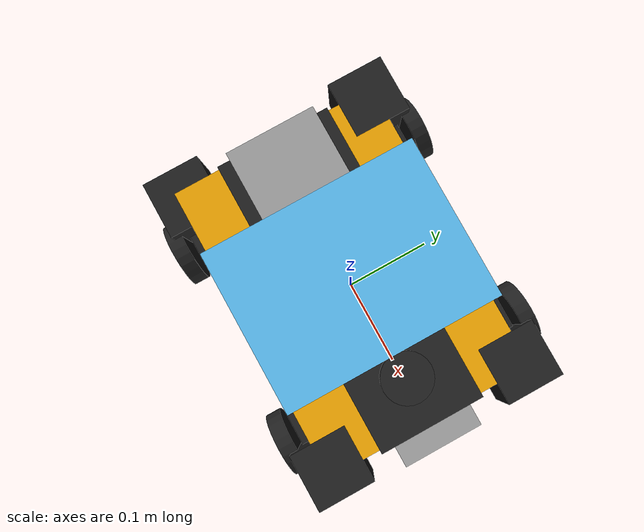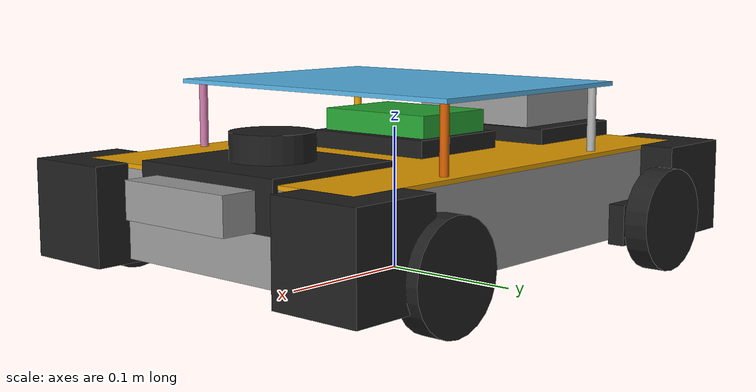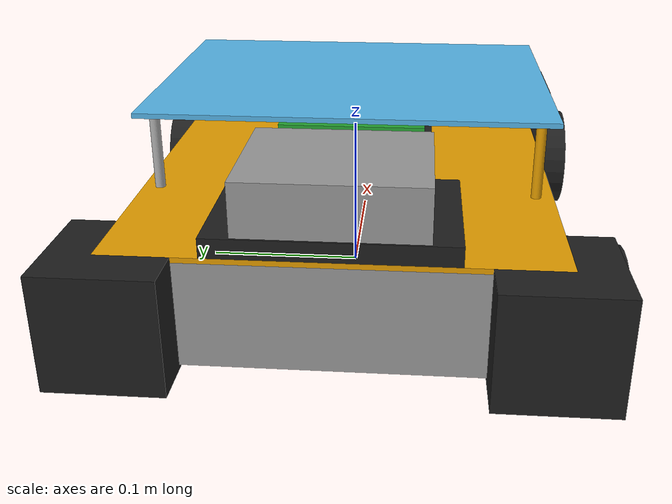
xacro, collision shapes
<?xml version="1.0"?>
<robot name="base101" xmlns:xacro="http://www.ros.org/wiki/xacro">

  <xacro:arg name="simulator" default="none"/>
  <xacro:include filename="$(find base101_description)/urdf/base101.xacro"/>

  <xacro:if value="$(arg arm)">
    <xacro:include filename="$(find base101_control)/urdf/base101_arm.hardware.xacro"/>
  </xacro:if>

</robot>

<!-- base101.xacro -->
<robot name="base101" xmlns:xacro="http://www.ros.org/wiki/xacro">

  <!-- gazebo | mujoco | isaac | none. `none` = real-hw / rviz-only (no sim
       ros2_control or extension tags). -->
  <xacro:arg name="simulator" default="gazebo"/>

  <!-- Which module is on the front bracket: realsense | oak_d. Declared by
       chassis.xacro too; repeated here so this file's argument list is
       complete and it can be overridden per launch. -->
  <xacro:arg name="camera" default="realsense"/>

  <!-- Mount one mod101 arm on the deck. Requires the mod101 underlay. -->
  <xacro:arg name="arm" default="false"/>

  <!-- Shared chassis: chassis links + materials. -->
  <xacro:include filename="$(find base101_description)/urdf/materials.xacro"/>
  <xacro:include filename="$(find base101_description)/urdf/chassis.xacro"/>

  <!-- One mod101 arm on the chassis deck. arm_tool is declared inside
       arm.xacro (defaulting to the web configurator's saved tool); declaring
       it here with a literal default would shadow that. -->
  <xacro:if value="$(arg arm)">
    <xacro:include filename="$(find base101_description)/urdf/arm.xacro"/>
  </xacro:if>

  <xacro:if value="${'$(arg simulator)' == 'gazebo'}">
    <!-- Wheel ros2_control system (GazeboSimSystem) + sensor/material tags. -->
    <xacro:include filename="$(find base101_description)/urdf/chassis.gazebo.ros2control"/>
    <xacro:include filename="$(find base101_description)/urdf/chassis.gazebo"/>
    <gazebo>
      <plugin filename="gz_ros2_control-system"
              name="gz_ros2_control::GazeboSimROS2ControlPlugin">
        <parameters>$(find base101_control)/config/controllers.sim.yaml</parameters>
      </plugin>
    </gazebo>
  </xacro:if>

  <xacro:if value="${'$(arg simulator)' == 'mujoco'}">
    <xacro:include filename="$(find base101_description)/urdf/chassis.mujoco.ros2control"/>
  </xacro:if>

</robot>

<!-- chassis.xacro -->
<robot name="base101_chassis" xmlns:xacro="http://www.ros.org/wiki/xacro">

<xacro:arg name="camera" default="realsense"/>

<!-- ================================= frame =================================
     Two 60x20 extrusion rails plus front/back cross members, with the
     3 mm top deck (base_link) closing the box. -->

<link name="base_link">
  <inertial>
    <origin xyz="-0.00433828 0 0.083465" rpy="0 0 0"/>
    <mass value="1.81049"/>
    <inertia ixx="0.00899888" iyy="0.0171197" izz="0.0261159" ixy="0" iyz="0" ixz="0"/>
  </inertial>
  <visual>
    <origin xyz="0 0 0.081965" rpy="0 0 0"/>
    <geometry>
      <mesh filename="file://$(find base101_description)/meshes/base_link.stl" scale="0.001 0.001 0.001"/>
    </geometry>
    <material name="plate_aluminum"/>
  </visual>
  <collision>
    <origin xyz="0 0 0.083465" rpy="0 0 0"/>
    <geometry>
      <box size="0.34 0.24 0.003"/>
    </geometry>
  </collision>
</link>

<link name="box_front_1">
  <inertial>
    <origin xyz="-0.00962595 0 -0.03" rpy="0 0 0"/>
    <mass value="0.740521"/>
    <inertia ixx="0.003275" iyy="0.000289" izz="0.003048" ixy="0" iyz="0" ixz="0"/>
  </inertial>
  <visual>
    <origin xyz="-0.17 0 0" rpy="0 0 0"/>
    <geometry>
      <mesh filename="file://$(find base101_description)/meshes/box_front_1.stl" scale="0.001 0.001 0.001"/>
    </geometry>
    <material name="extrusion_grey"/>
  </visual>
  <collision>
    <origin xyz="-0.01 0 -0.03" rpy="0 0 0"/>
    <geometry>
      <box size="0.02 0.24 0.06"/>
    </geometry>
  </collision>
</link>

<link name="box_back_1">
  <inertial>
    <origin xyz="0.00962595 0 -0.03" rpy="0 0 0"/>
    <mass value="0.740521"/>
    <inertia ixx="0.003275" iyy="0.000289" izz="0.003048" ixy="0" iyz="0" ixz="0"/>
  </inertial>
  <visual>
    <origin xyz="0.17 0 0" rpy="0 0 0"/>
    <geometry>
      <mesh filename="file://$(find base101_description)/meshes/box_back_1.stl" scale="0.001 0.001 0.001"/>
    </geometry>
    <material name="extrusion_grey"/>
  </visual>
  <collision>
    <origin xyz="0.01 0 -0.03" rpy="0 0 0"/>
    <geometry>
      <box size="0.02 0.24 0.06"/>
    </geometry>
  </collision>
</link>

<link name="box_left_1">
  <inertial>
    <origin xyz="-0.17 -0.00974265 -0.0299929" rpy="0 0 0"/>
    <mass value="1.07632"/>
    <inertia ixx="0.00042" iyy="0.009599" izz="0.009268" ixy="0" iyz="0" ixz="0"/>
  </inertial>
  <visual>
    <origin xyz="-0.17 -0.12 0" rpy="0 0 0"/>
    <geometry>
      <mesh filename="file://$(find base101_description)/meshes/box_left_1.stl" scale="0.001 0.001 0.001"/>
    </geometry>
    <material name="extrusion_grey"/>
  </visual>
  <collision>
    <origin xyz="-0.17 -0.01 -0.03" rpy="0 0 0"/>
    <geometry>
      <box size="0.34 0.02 0.06"/>
    </geometry>
  </collision>
</link>

<link name="box_right_1">
  <inertial>
    <origin xyz="-0.17 0.00974265 -0.0299929" rpy="0 0 0"/>
    <mass value="1.07632"/>
    <inertia ixx="0.00042" iyy="0.009599" izz="0.009268" ixy="0" iyz="0" ixz="0"/>
  </inertial>
  <visual>
    <origin xyz="-0.17 0.12 0" rpy="0 0 0"/>
    <geometry>
      <mesh filename="file://$(find base101_description)/meshes/box_right_1.stl" scale="0.001 0.001 0.001"/>
    </geometry>
    <material name="extrusion_grey"/>
  </visual>
  <collision>
    <origin xyz="-0.17 0.01 -0.03" rpy="0 0 0"/>
    <geometry>
      <box size="0.34 0.02 0.06"/>
    </geometry>
  </collision>
</link>

<joint name="box_front_joint" type="fixed">
  <origin xyz="0.17 0 0.081965" rpy="0 0 0"/>
  <parent link="base_link"/>
  <child link="box_front_1"/>
</joint>

<joint name="box_back_joint" type="fixed">
  <origin xyz="-0.17 0 0.081965" rpy="0 0 0"/>
  <parent link="base_link"/>
  <child link="box_back_1"/>
</joint>

<joint name="box_left_joint" type="fixed">
  <origin xyz="0.17 0.12 0.081965" rpy="0 0 0"/>
  <parent link="base_link"/>
  <child link="box_left_1"/>
</joint>

<joint name="box_right_joint" type="fixed">
  <origin xyz="0.17 -0.12 0.081965" rpy="0 0 0"/>
  <parent link="base_link"/>
  <child link="box_right_1"/>
</joint>

<link name="mount_front_left_1">
  <inertial>
    <origin xyz="0.0252801 0.00623325 -0.00938469" rpy="0 0 0"/>
    <mass value="0.120821"/>
    <inertia ixx="1e-05" iyy="5.1e-05" izz="4.4e-05" ixy="0" iyz="0" ixz="0"/>
  </inertial>
  <visual>
    <origin xyz="-0.09469 -0.12 0.03958" rpy="0 0 0"/>
    <geometry>
      <mesh filename="file://$(find base101_description)/meshes/mount_front_left_1.stl" scale="0.001 0.001 0.001"/>
    </geometry>
    <material name="plastic_black"/>
  </visual>
  <collision>
    <origin xyz="0.0249367 0.006 -0.00921" rpy="0 0 0"/>
    <geometry>
      <box size="0.0598733 0.012 0.02842"/>
    </geometry>
  </collision>
</link>

<link name="mount_front_right_1">
  <inertial>
    <origin xyz="-0.0245929 -0.00623325 -0.00938469" rpy="0 0 0"/>
    <mass value="0.120821"/>
    <inertia ixx="1e-05" iyy="5.1e-05" izz="4.4e-05" ixy="0" iyz="0" ixz="0"/>
  </inertial>
  <visual>
    <origin xyz="-0.144563 0.12 0.03958" rpy="0 0 0"/>
    <geometry>
      <mesh filename="file://$(find base101_description)/meshes/mount_front_right_1.stl" scale="0.001 0.001 0.001"/>
    </geometry>
    <material name="plastic_black"/>
  </visual>
  <collision>
    <origin xyz="-0.0249363 -0.006 -0.00921" rpy="0 0 0"/>
    <geometry>
      <box size="0.0598733 0.012 0.02842"/>
    </geometry>
  </collision>
</link>

<link name="mount_back_left_1">
  <inertial>
    <origin xyz="-0.0245932 0.00623325 -0.00938469" rpy="0 0 0"/>
    <mass value="0.120821"/>
    <inertia ixx="1e-05" iyy="5.1e-05" izz="4.4e-05" ixy="0" iyz="0" ixz="0"/>
  </inertial>
  <visual>
    <origin xyz="0.09469 -0.12 0.03958" rpy="0 0 0"/>
    <geometry>
      <mesh filename="file://$(find base101_description)/meshes/mount_back_left_1.stl" scale="0.001 0.001 0.001"/>
    </geometry>
    <material name="plastic_black"/>
  </visual>
  <collision>
    <origin xyz="-0.0249367 0.006 -0.00921" rpy="0 0 0"/>
    <geometry>
      <box size="0.0598733 0.012 0.02842"/>
    </geometry>
  </collision>
</link>

<link name="mount_back_right_1">
  <inertial>
    <origin xyz="0.0252798 -0.00623325 -0.00938469" rpy="0 0 0"/>
    <mass value="0.120821"/>
    <inertia ixx="1e-05" iyy="5.1e-05" izz="4.4e-05" ixy="0" iyz="0" ixz="0"/>
  </inertial>
  <visual>
    <origin xyz="0.144563 0.12 0.03958" rpy="0 0 0"/>
    <geometry>
      <mesh filename="file://$(find base101_description)/meshes/mount_back_right_1.stl" scale="0.001 0.001 0.001"/>
    </geometry>
    <material name="plastic_black"/>
  </visual>
  <collision>
    <origin xyz="0.0249363 -0.006 -0.00921" rpy="0 0 0"/>
    <geometry>
      <box size="0.0598733 0.012 0.02842"/>
    </geometry>
  </collision>
</link>

<joint name="mount_front_left_joint" type="fixed">
  <origin xyz="-0.07531 0 -0.03958" rpy="0 0 0"/>
  <parent link="box_left_1"/>
  <child link="mount_front_left_1"/>
</joint>

<joint name="mount_front_right_joint" type="fixed">
  <origin xyz="-0.025437 0 -0.03958" rpy="0 0 0"/>
  <parent link="box_right_1"/>
  <child link="mount_front_right_1"/>
</joint>

<joint name="mount_back_left_joint" type="fixed">
  <origin xyz="-0.26469 0 -0.03958" rpy="0 0 0"/>
  <parent link="box_left_1"/>
  <child link="mount_back_left_1"/>
</joint>

<joint name="mount_back_right_joint" type="fixed">
  <origin xyz="-0.314563 0 -0.03958" rpy="0 0 0"/>
  <parent link="box_right_1"/>
  <child link="mount_back_right_1"/>
</joint>

<link name="wheel_hub_front_left_1">
  <inertial>
    <origin xyz="2.42448e-07 0.0045847 -7.68714e-05" rpy="0 0 0"/>
    <mass value="0.0207465"/>
    <inertia ixx="8.87074e-07" iyy="1.63285e-06" izz="8.98669e-07" ixy="0" iyz="-4.76303e-09" ixz="0"/>
  </inertial>
  <visual>
    <origin xyz="-0.120057 -0.1289 0.045967" rpy="0 0 0"/>
    <geometry>
      <mesh filename="file://$(find base101_description)/meshes/wheel_hub_front_left_1.stl" scale="0.001 0.001 0.001"/>
    </geometry>
    <material name="motor_black"/>
  </visual>
</link>

<link name="wheel_front_left_1">
  <inertial>
    <origin xyz="2.41449e-07 0.01605 4.80462e-08" rpy="0 0 0"/>
    <mass value="0.53737"/>
    <inertia ixx="0.000184234" iyy="0.000342279" izz="0.000184234" ixy="0" iyz="0" ixz="0"/>
  </inertial>
  <visual>
    <origin xyz="-0.120057 -0.1289 0.045967" rpy="0 0 0"/>
    <geometry>
      <mesh filename="file://$(find base101_description)/meshes/wheel_front_left_1.stl" scale="0.001 0.001 0.001"/>
    </geometry>
    <material name="motor_black"/>
  </visual>
  <collision>
    <origin xyz="3.59647e-06 0.01605 -5.76878e-06" rpy="-1.570796 0 0"/>
    <geometry>
      <cylinder radius="0.0359965" length="0.0171"/>
    </geometry>
  </collision>
</link>

<joint name="wheel_hub_front_left_joint" type="fixed">
  <origin xyz="0.025367 0.0089 -0.006387" rpy="0 0 0"/>
  <parent link="mount_front_left_1"/>
  <child link="wheel_hub_front_left_1"/>
</joint>

<joint name="front_left_wheel_joint" type="continuous">
  <origin xyz="0 0 0" rpy="0 0 0"/>
  <parent link="wheel_hub_front_left_1"/>
  <child link="wheel_front_left_1"/>
  <axis xyz="0 1 0"/>
</joint>

<link name="wheel_hub_front_right_1">
  <inertial>
    <origin xyz="2.42448e-07 -0.0045847 -7.68714e-05" rpy="0 0 0"/>
    <mass value="0.0207465"/>
    <inertia ixx="8.87074e-07" iyy="1.63285e-06" izz="8.98669e-07" ixy="0" iyz="4.76303e-09" ixz="0"/>
  </inertial>
  <visual>
    <origin xyz="-0.120057 0.1289 0.045967" rpy="0 0 0"/>
    <geometry>
      <mesh filename="file://$(find base101_description)/meshes/wheel_hub_front_right_1.stl" scale="0.001 0.001 0.001"/>
    </geometry>
    <material name="motor_black"/>
  </visual>
</link>

<link name="wheel_front_right_1">
  <inertial>
    <origin xyz="2.41449e-07 -0.01605 4.80462e-08" rpy="0 0 0"/>
    <mass value="0.53737"/>
    <inertia ixx="0.000184234" iyy="0.000342279" izz="0.000184234" ixy="0" iyz="0" ixz="0"/>
  </inertial>
  <visual>
    <origin xyz="-0.120057 0.1289 0.045967" rpy="0 0 0"/>
    <geometry>
      <mesh filename="file://$(find base101_description)/meshes/wheel_front_right_1.stl" scale="0.001 0.001 0.001"/>
    </geometry>
    <material name="motor_black"/>
  </visual>
  <collision>
    <origin xyz="3.59647e-06 -0.01605 -5.76878e-06" rpy="-1.570796 0 0"/>
    <geometry>
      <cylinder radius="0.0359965" length="0.0171"/>
    </geometry>
  </collision>
</link>

<joint name="wheel_hub_front_right_joint" type="fixed">
  <origin xyz="-0.024506 -0.0089 -0.006387" rpy="0 0 0"/>
  <parent link="mount_front_right_1"/>
  <child link="wheel_hub_front_right_1"/>
</joint>

<joint name="front_right_wheel_joint" type="continuous">
  <origin xyz="0 0 0" rpy="0 0 0"/>
  <parent link="wheel_hub_front_right_1"/>
  <child link="wheel_front_right_1"/>
  <axis xyz="0 1 0"/>
</joint>

<link name="wheel_hub_back_left_1">
  <inertial>
    <origin xyz="-1.253e-07 0.0045847 -7.68712e-05" rpy="0 0 0"/>
    <mass value="0.0207465"/>
    <inertia ixx="8.87074e-07" iyy="1.63285e-06" izz="8.98669e-07" ixy="0" iyz="-4.76302e-09" ixz="0"/>
  </inertial>
  <visual>
    <origin xyz="0.119196 -0.1289 0.045967" rpy="0 0 0"/>
    <geometry>
      <mesh filename="file://$(find base101_description)/meshes/wheel_hub_back_left_1.stl" scale="0.001 0.001 0.001"/>
    </geometry>
    <material name="motor_black"/>
  </visual>
</link>

<link name="wheel_back_left_1">
  <inertial>
    <origin xyz="-1.25153e-07 0.01605 4.79703e-08" rpy="0 0 0"/>
    <mass value="0.53737"/>
    <inertia ixx="0.000184234" iyy="0.000342279" izz="0.000184234" ixy="0" iyz="0" ixz="0"/>
  </inertial>
  <visual>
    <origin xyz="0.119196 -0.1289 0.045967" rpy="0 0 0"/>
    <geometry>
      <mesh filename="file://$(find base101_description)/meshes/wheel_back_left_1.stl" scale="0.001 0.001 0.001"/>
    </geometry>
    <material name="motor_black"/>
  </visual>
  <collision>
    <origin xyz="3.22809e-06 0.01605 -5.76878e-06" rpy="-1.570796 0 0"/>
    <geometry>
      <cylinder radius="0.0359965" length="0.0171"/>
    </geometry>
  </collision>
</link>

<joint name="wheel_hub_back_left_joint" type="fixed">
  <origin xyz="-0.024506 0.0089 -0.006387" rpy="0 0 0"/>
  <parent link="mount_back_left_1"/>
  <child link="wheel_hub_back_left_1"/>
</joint>

<joint name="back_left_wheel_joint" type="continuous">
  <origin xyz="0 0 0" rpy="0 0 0"/>
  <parent link="wheel_hub_back_left_1"/>
  <child link="wheel_back_left_1"/>
  <axis xyz="0 1 0"/>
</joint>

<link name="wheel_hub_back_right_1">
  <inertial>
    <origin xyz="-1.253e-07 -0.0045847 -7.68712e-05" rpy="0 0 0"/>
    <mass value="0.0207465"/>
    <inertia ixx="8.87074e-07" iyy="1.63285e-06" izz="8.98669e-07" ixy="0" iyz="4.76302e-09" ixz="0"/>
  </inertial>
  <visual>
    <origin xyz="0.119196 0.1289 0.045967" rpy="0 0 0"/>
    <geometry>
      <mesh filename="file://$(find base101_description)/meshes/wheel_hub_back_right_1.stl" scale="0.001 0.001 0.001"/>
    </geometry>
    <material name="motor_black"/>
  </visual>
</link>

<link name="wheel_back_right_1">
  <inertial>
    <origin xyz="-1.25153e-07 -0.01605 4.79703e-08" rpy="0 0 0"/>
    <mass value="0.53737"/>
    <inertia ixx="0.000184234" iyy="0.000342279" izz="0.000184234" ixy="0" iyz="0" ixz="0"/>
  </inertial>
  <visual>
    <origin xyz="0.119196 0.1289 0.045967" rpy="0 0 0"/>
    <geometry>
      <mesh filename="file://$(find base101_description)/meshes/wheel_back_right_1.stl" scale="0.001 0.001 0.001"/>
    </geometry>
    <material name="motor_black"/>
  </visual>
  <collision>
    <origin xyz="3.22809e-06 -0.01605 -5.76878e-06" rpy="-1.570796 0 0"/>
    <geometry>
      <cylinder radius="0.0359965" length="0.0171"/>
    </geometry>
  </collision>
</link>

<joint name="wheel_hub_back_right_joint" type="fixed">
  <origin xyz="0.025367 -0.0089 -0.006387" rpy="0 0 0"/>
  <parent link="mount_back_right_1"/>
  <child link="wheel_hub_back_right_1"/>
</joint>

<joint name="back_right_wheel_joint" type="continuous">
  <origin xyz="0 0 0" rpy="0 0 0"/>
  <parent link="wheel_hub_back_right_1"/>
  <child link="wheel_back_right_1"/>
  <axis xyz="0 1 0"/>
</joint>

<link name="bumper_front_left_1">
  <inertial>
    <origin xyz="0.00320947 -0.00742985 -0.0302987" rpy="0 0 0"/>
    <mass value="0.71387"/>
    <inertia ixx="0.00047" iyy="0.000371" izz="0.000311" ixy="8.4e-05" iyz="-3.4e-05" ixz="5.1e-05"/>
  </inertial>
  <visual>
    <origin xyz="-0.17 -0.12 -0.003" rpy="0 0 0"/>
    <geometry>
      <mesh filename="file://$(find base101_description)/meshes/bumper_front_left_1.stl" scale="0.001 0.001 0.001"/>
    </geometry>
    <material name="plastic_black"/>
  </visual>
  <collision>
    <origin xyz="-0.0075 -0.0075 -0.033" rpy="0 0 0"/>
    <geometry>
      <box size="0.065 0.065 0.066"/>
    </geometry>
  </collision>
</link>

<link name="bumper_front_right_1">
  <inertial>
    <origin xyz="0.00320947 0.00742985 -0.0302987" rpy="0 0 0"/>
    <mass value="0.71387"/>
    <inertia ixx="0.00047" iyy="0.000371" izz="0.000311" ixy="-8.4e-05" iyz="3.4e-05" ixz="5.1e-05"/>
  </inertial>
  <visual>
    <origin xyz="-0.17 0.12 -0.003" rpy="0 0 0"/>
    <geometry>
      <mesh filename="file://$(find base101_description)/meshes/bumper_front_right_1.stl" scale="0.001 0.001 0.001"/>
    </geometry>
    <material name="plastic_black"/>
  </visual>
  <collision>
    <origin xyz="-0.0075 0.0075 -0.033" rpy="0 0 0"/>
    <geometry>
      <box size="0.065 0.065 0.066"/>
    </geometry>
  </collision>
</link>

<link name="bumper_back_left_1">
  <inertial>
    <origin xyz="-0.00320951 -0.0074299 -0.0302986" rpy="0 0 0"/>
    <mass value="0.713868"/>
    <inertia ixx="0.00047" iyy="0.000371" izz="0.000311" ixy="-8.4e-05" iyz="-3.4e-05" ixz="-5.1e-05"/>
  </inertial>
  <visual>
    <origin xyz="0.17 -0.12 -0.003" rpy="0 0 0"/>
    <geometry>
      <mesh filename="file://$(find base101_description)/meshes/bumper_back_left_1.stl" scale="0.001 0.001 0.001"/>
    </geometry>
    <material name="plastic_black"/>
  </visual>
  <collision>
    <origin xyz="0.0075 -0.0075 -0.033" rpy="0 0 0"/>
    <geometry>
      <box size="0.065 0.065 0.066"/>
    </geometry>
  </collision>
</link>

<link name="bumper_back_right_1">
  <inertial>
    <origin xyz="-0.00320951 0.0074299 -0.0302986" rpy="0 0 0"/>
    <mass value="0.713868"/>
    <inertia ixx="0.00047" iyy="0.000371" izz="0.000311" ixy="8.4e-05" iyz="3.4e-05" ixz="-5.1e-05"/>
  </inertial>
  <visual>
    <origin xyz="0.17 0.12 -0.003" rpy="0 0 0"/>
    <geometry>
      <mesh filename="file://$(find base101_description)/meshes/bumper_back_right_1.stl" scale="0.001 0.001 0.001"/>
    </geometry>
    <material name="plastic_black"/>
  </visual>
  <collision>
    <origin xyz="0.0075 0.0075 -0.033" rpy="0 0 0"/>
    <geometry>
      <box size="0.065 0.065 0.066"/>
    </geometry>
  </collision>
</link>

<joint name="bumper_front_left_joint" type="fixed">
  <origin xyz="0.17 0.12 0.084965" rpy="0 0 0"/>
  <parent link="base_link"/>
  <child link="bumper_front_left_1"/>
</joint>

<joint name="bumper_front_right_joint" type="fixed">
  <origin xyz="0.17 -0.12 0.084965" rpy="0 0 0"/>
  <parent link="base_link"/>
  <child link="bumper_front_right_1"/>
</joint>

<joint name="bumper_back_left_joint" type="fixed">
  <origin xyz="-0.17 0.12 0.084965" rpy="0 0 0"/>
  <parent link="base_link"/>
  <child link="bumper_back_left_1"/>
</joint>

<joint name="bumper_back_right_joint" type="fixed">
  <origin xyz="-0.17 -0.12 0.084965" rpy="0 0 0"/>
  <parent link="base_link"/>
  <child link="bumper_back_right_1"/>
</joint>

<link name="standoff_front_left_1">
  <inertial>
    <origin xyz="0 0 0.0225" rpy="0 0 0"/>
    <mass value="0.00998792"/>
    <inertia ixx="2e-06" iyy="2e-06" izz="0" ixy="0" iyz="0" ixz="0"/>
  </inertial>
  <visual>
    <origin xyz="-0.08 -0.11 -0.003" rpy="0 0 0"/>
    <geometry>
      <mesh filename="file://$(find base101_description)/meshes/standoff_front_left_1.stl" scale="0.001 0.001 0.001"/>
    </geometry>
    <material name="hardware_steel"/>
  </visual>
  <collision>
    <origin xyz="0 -8.79288e-06 0.0225" rpy="0 0 0"/>
    <geometry>
      <cylinder radius="0.00299561" length="0.045"/>
    </geometry>
  </collision>
</link>

<link name="standoff_front_right_1">
  <inertial>
    <origin xyz="0 0 0.0225" rpy="0 0 0"/>
    <mass value="0.00998792"/>
    <inertia ixx="2e-06" iyy="2e-06" izz="0" ixy="0" iyz="0" ixz="0"/>
  </inertial>
  <visual>
    <origin xyz="-0.08 0.11 -0.003" rpy="0 0 0"/>
    <geometry>
      <mesh filename="file://$(find base101_description)/meshes/standoff_front_right_1.stl" scale="0.001 0.001 0.001"/>
    </geometry>
    <material name="hardware_steel"/>
  </visual>
  <collision>
    <origin xyz="0 -8.79288e-06 0.0225" rpy="0 0 0"/>
    <geometry>
      <cylinder radius="0.00299561" length="0.045"/>
    </geometry>
  </collision>
</link>

<link name="standoff_back_left_1">
  <inertial>
    <origin xyz="0 0 0.0225" rpy="0 0 0"/>
    <mass value="0.00998792"/>
    <inertia ixx="2e-06" iyy="2e-06" izz="0" ixy="0" iyz="0" ixz="0"/>
  </inertial>
  <visual>
    <origin xyz="0.08 -0.11 -0.003" rpy="0 0 0"/>
    <geometry>
      <mesh filename="file://$(find base101_description)/meshes/standoff_back_left_1.stl" scale="0.001 0.001 0.001"/>
    </geometry>
    <material name="hardware_steel"/>
  </visual>
  <collision>
    <origin xyz="0 8.79288e-06 0.0225" rpy="0 0 0"/>
    <geometry>
      <cylinder radius="0.00299561" length="0.045"/>
    </geometry>
  </collision>
</link>

<link name="standoff_back_right_1">
  <inertial>
    <origin xyz="0 0 0.0225" rpy="0 0 0"/>
    <mass value="0.00998792"/>
    <inertia ixx="2e-06" iyy="2e-06" izz="0" ixy="0" iyz="0" ixz="0"/>
  </inertial>
  <visual>
    <origin xyz="0.08 0.11 -0.003" rpy="0 0 0"/>
    <geometry>
      <mesh filename="file://$(find base101_description)/meshes/standoff_back_right_1.stl" scale="0.001 0.001 0.001"/>
    </geometry>
    <material name="hardware_steel"/>
  </visual>
  <collision>
    <origin xyz="0 8.79288e-06 0.0225" rpy="0 0 0"/>
    <geometry>
      <cylinder radius="0.00299561" length="0.045"/>
    </geometry>
  </collision>
</link>

<link name="top_plate_1">
  <inertial>
    <origin xyz="0.0799507 0.11 0.00150002" rpy="0 0 0"/>
    <mass value="0.990324"/>
    <inertia ixx="0.004737" iyy="0.002662" izz="0.007398" ixy="0" iyz="0" ixz="0"/>
  </inertial>
  <visual>
    <origin xyz="0.08 0.11 -0.048" rpy="0 0 0"/>
    <geometry>
      <mesh filename="file://$(find base101_description)/meshes/top_plate_1.stl" scale="0.001 0.001 0.001"/>
    </geometry>
    <material name="plate_aluminum"/>
  </visual>
  <collision>
    <origin xyz="0.0799519 0.11 0.00150002" rpy="0 0 0"/>
    <geometry>
      <box size="0.179904 0.24 0.003"/>
    </geometry>
  </collision>
</link>

<joint name="standoff_front_left_joint" type="fixed">
  <origin xyz="0.08 0.11 0.084965" rpy="0 0 0"/>
  <parent link="base_link"/>
  <child link="standoff_front_left_1"/>
</joint>

<joint name="standoff_front_right_joint" type="fixed">
  <origin xyz="0.08 -0.11 0.084965" rpy="0 0 0"/>
  <parent link="base_link"/>
  <child link="standoff_front_right_1"/>
</joint>

<joint name="standoff_back_left_joint" type="fixed">
  <origin xyz="-0.08 0.11 0.084965" rpy="0 0 0"/>
  <parent link="base_link"/>
  <child link="standoff_back_left_1"/>
</joint>

<joint name="standoff_back_right_joint" type="fixed">
  <origin xyz="-0.08 -0.11 0.084965" rpy="0 0 0"/>
  <parent link="base_link"/>
  <child link="standoff_back_right_1"/>
</joint>

<joint name="top_plate_joint" type="fixed">
  <origin xyz="0 0 0.045" rpy="0 0 0"/>
  <parent link="standoff_back_right_1"/>
  <child link="top_plate_1"/>
</joint>

<link name="lidar_mount_1">
  <inertial>
    <origin xyz="0.0117249 -0.0501338 -0.0161636" rpy="0 0 0"/>
    <mass value="0.20407"/>
    <inertia ixx="0.000244" iyy="8.4e-05" izz="0.000322" ixy="0" iyz="0" ixz="-2e-06"/>
  </inertial>
  <visual>
    <origin xyz="-0.1 -0.05 0" rpy="0 0 0"/>
    <geometry>
      <mesh filename="file://$(find base101_description)/meshes/lidar_mount_1.stl" scale="0.001 0.001 0.001"/>
    </geometry>
    <material name="plastic_black"/>
  </visual>
  <collision>
    <origin xyz="0.01035 -0.05 -0.00945654" rpy="0 0 0"/>
    <geometry>
      <box size="0.0688 0.1095 0.0189131"/>
    </geometry>
  </collision>
</link>

<link name="lidar_1">
  <inertial>
    <origin xyz="-0.0214156 -0.0215945 0.0140184" rpy="0 0 0"/>
    <mass value="0.253675"/>
    <inertia ixx="0.000111" iyy="0.000111" izz="0.000156" ixy="0" iyz="0" ixz="0"/>
  </inertial>
  <visual>
    <origin xyz="-0.138888 -0.0215 0.015813" rpy="0 0 0"/>
    <geometry>
      <mesh filename="file://$(find base101_description)/meshes/lidar_1.stl" scale="0.001 0.001 0.001"/>
    </geometry>
    <material name="motor_black"/>
  </visual>
  <collision>
    <origin xyz="-0.0214997 -0.0215 0.0206499" rpy="0 0 0"/>
    <geometry>
      <cylinder radius="0.0278" length="0.0413"/>
    </geometry>
  </collision>
</link>

<joint name="lidar_mount_joint" type="fixed">
  <origin xyz="0.1 0.05 0.081965" rpy="0 0 0"/>
  <parent link="base_link"/>
  <child link="lidar_mount_1"/>
</joint>

<joint name="lidar_joint" type="fixed">
  <origin xyz="0.038888 -0.0285 -0.015813" rpy="0 0 0"/>
  <parent link="lidar_mount_1"/>
  <child link="lidar_1"/>
</joint>

<link name="lidar_frame"/>
<joint name="lidar_frame_joint" type="fixed">
  <origin xyz="-0.021498 -0.0215 0.030313" rpy="0 0 3.141593"/>
  <parent link="lidar_1"/>
  <child link="lidar_frame"/>
</joint>

<link name="camera_edge_bracket_1">
  <inertial>
    <origin xyz="-0.0234361 -0.05 -0.00264041" rpy="0 0 0"/>
    <mass value="0.40831"/>
    <inertia ixx="0.000606377" iyy="0.000544929" izz="0.00108709" ixy="0" iyz="0" ixz="6.71514e-05"/>
  </inertial>
  <visual>
    <origin xyz="-0.16 -0.05 -0.003" rpy="0 0 0"/>
    <geometry>
      <mesh filename="file://$(find base101_description)/meshes/camera_edge_bracket_1.stl" scale="0.001 0.001 0.001"/>
    </geometry>
    <material name="plastic_black"/>
  </visual>
  <collision>
    <origin xyz="-0.038 -0.05 -0.013" rpy="0 0 0"/>
    <geometry>
      <box size="0.104 0.12 0.034"/>
    </geometry>
  </collision>
</link>

<joint name="camera_edge_bracket_joint" type="fixed">
  <origin xyz="0.16 0.05 0.084965" rpy="0 0 0"/>
  <parent link="base_link"/>
  <child link="camera_edge_bracket_1"/>
</joint>

<xacro:if value="${'$(arg camera)' == 'realsense'}">
  <link name="camera_realsense_1">
    <inertial>
      <origin xyz="0.0116574 0.0239083 -2.34873e-05" rpy="0 0 0"/>
      <mass value="0.0720014"/>
      <inertia ixx="4.6e-05" iyy="7e-06" izz="4.7e-05" ixy="0" iyz="0" ixz="0"/>
    </inertial>
    <visual>
      <origin xyz="-0.174 0.0225 0.0135" rpy="0 0 0"/>
      <geometry>
        <mesh filename="file://$(find base101_description)/meshes/camera_realsense_1.stl" scale="0.001 0.001 0.001"/>
      </geometry>
      <material name="electronics_grey"/>
    </visual>
  <collision>
    <origin xyz="0.012525 0.0225433 -2.15769e-08" rpy="0 0 0"/>
    <geometry>
      <box size="0.02505 0.0898433 0.025"/>
    </geometry>
  </collision>
  </link>

  <joint name="camera_realsense_joint" type="fixed">
    <origin xyz="0.014 -0.0725 -0.0165" rpy="0 0 0"/>
    <parent link="camera_edge_bracket_1"/>
    <child link="camera_realsense_1"/>
  </joint>

  <link name="camera_link"/>
  <joint name="camera_link_joint" type="fixed">
    <origin xyz="0.02505 0.0225 0" rpy="0 0 0"/>
    <parent link="camera_realsense_1"/>
    <child link="camera_link"/>
  </joint>
</xacro:if>

<xacro:if value="${'$(arg camera)' == 'oak_d'}">
  <link name="camera_luxonis_1">
    <inertial>
      <origin xyz="0.00916344 -0.0373052 -0.0044071" rpy="0 0 0"/>
      <mass value="0.157097"/>
      <inertia ixx="0.000123" iyy="1.6e-05" izz="0.000117" ixy="0" iyz="0" ixz="0"/>
    </inertial>
    <visual>
      <origin xyz="-0.174 -0.0375 0.0055" rpy="0 0 0"/>
      <geometry>
        <mesh filename="file://$(find base101_description)/meshes/camera_luxonis_1.stl" scale="0.001 0.001 0.001"/>
      </geometry>
      <material name="electronics_grey"/>
    </visual>
  <collision>
    <origin xyz="0.00872501 -0.0375 -0.0045" rpy="0 0 0"/>
    <geometry>
      <box size="0.01745 0.091 0.028"/>
    </geometry>
  </collision>
  </link>

  <joint name="camera_luxonis_joint" type="fixed">
    <origin xyz="0.014 -0.0125 -0.0085" rpy="0 0 0"/>
    <parent link="camera_edge_bracket_1"/>
    <child link="camera_luxonis_1"/>
  </joint>

  <link name="camera_link"/>
  <joint name="camera_link_joint" type="fixed">
    <origin xyz="0.01745 -0.0375 -0.0045" rpy="0 0 0"/>
    <parent link="camera_luxonis_1"/>
    <child link="camera_link"/>
  </joint>
</xacro:if>

<link name="camera_optical_frame"/>
<joint name="camera_optical_frame_joint" type="fixed">
  <origin xyz="0 0 0" rpy="-1.570796 0 -1.570796"/>
  <parent link="camera_link"/>
  <child link="camera_optical_frame"/>
</joint>

<link name="jetson_mount_1">
  <inertial>
    <origin xyz="0.00236852 0.000111413 0.00216572" rpy="0 0 0"/>
    <mass value="0.228562"/>
    <inertia ixx="0.000461977" iyy="0.000183569" izz="0.000644485" ixy="-1.82344e-07" iyz="0" ixz="-1.33082e-07"/>
  </inertial>
  <visual>
    <origin xyz="0.127 0 -0.003" rpy="0 0 0"/>
    <geometry>
      <mesh filename="file://$(find base101_description)/meshes/jetson_mount_1.stl" scale="0.001 0.001 0.001"/>
    </geometry>
    <material name="plastic_black"/>
  </visual>
  <collision>
    <origin xyz="-1.52588e-08 -4.57764e-08 0.0055" rpy="0 0 0"/>
    <geometry>
      <box size="0.086 0.131455 0.011"/>
    </geometry>
  </collision>
</link>

<link name="orin_simplified_1">
  <inertial>
    <origin xyz="-0.034953 0.045059 0.0100499" rpy="0 0 0"/>
    <mass value="0.543842"/>
    <inertia ixx="0.00033" iyy="0.000355" izz="0.00062" ixy="-1.1e-05" iyz="-4e-06" ixz="-3.3e-05"/>
  </inertial>
  <visual>
    <origin xyz="0.092 0.046136 -0.014" rpy="0 0 0"/>
    <geometry>
      <mesh filename="file://$(find base101_description)/meshes/orin_simplified_1.stl" scale="0.001 0.001 0.001"/>
    </geometry>
    <material name="electronics_grey"/>
  </visual>
  <collision>
    <origin xyz="-0.0364243 0.0459998 0.013718" rpy="0 0 0"/>
    <geometry>
      <box size="0.0808486 0.1 0.032296"/>
    </geometry>
  </collision>
</link>

<link name="orp_link101_mount_1">
  <inertial>
    <origin xyz="3.66232e-09 -8.75664e-09 0.0022725" rpy="0 0 0"/>
    <mass value="0.178021"/>
    <inertia ixx="0.000205311" iyy="0.000122439" izz="0.000326676" ixy="-2.40602e-08" iyz="0" ixz="0"/>
  </inertial>
  <visual>
    <origin xyz="0.01 0 -0.003" rpy="0 0 0"/>
    <geometry>
      <mesh filename="file://$(find base101_description)/meshes/orp_link101_mount_1.stl" scale="0.001 0.001 0.001"/>
    </geometry>
    <material name="plastic_black"/>
  </visual>
  <collision>
    <origin xyz="0 0 0.006" rpy="0 0 0"/>
    <geometry>
      <box size="0.08 0.1 0.012"/>
    </geometry>
  </collision>
</link>

<link name="link_101_1">
  <inertial>
    <origin xyz="0.0313065 0.0440383 0.00306757" rpy="0 0 0"/>
    <mass value="0.114789"/>
    <inertia ixx="5.9e-05" iyy="4.6e-05" izz="0.000103" ixy="-2e-06" iyz="-2e-06" ixz="-2e-06"/>
  </inertial>
  <visual>
    <origin xyz="0.0381 0.0415 -0.015" rpy="0 0 0"/>
    <geometry>
      <mesh filename="file://$(find base101_description)/meshes/link_101_1.stl" scale="0.001 0.001 0.001"/>
    </geometry>
    <material name="pcb_green"/>
  </visual>
  <collision>
    <origin xyz="0.027775 0.0414 0.0076975" rpy="0 0 0"/>
    <geometry>
      <box size="0.06525 0.09 0.015395"/>
    </geometry>
  </collision>
</link>

<joint name="jetson_mount_joint" type="fixed">
  <origin xyz="-0.127 0 0.084965" rpy="0 0 0"/>
  <parent link="base_link"/>
  <child link="jetson_mount_1"/>
</joint>

<joint name="orin_simplified_joint" type="fixed">
  <origin xyz="0.035 -0.046136 0.011" rpy="0 0 0"/>
  <parent link="jetson_mount_1"/>
  <child link="orin_simplified_1"/>
</joint>

<joint name="orp_link101_mount_joint" type="fixed">
  <origin xyz="-0.01 0 0.084965" rpy="0 0 0"/>
  <parent link="base_link"/>
  <child link="orp_link101_mount_1"/>
</joint>

<joint name="link_101_joint" type="fixed">
  <origin xyz="-0.0281 -0.0415 0.012" rpy="0 0 0"/>
  <parent link="orp_link101_mount_1"/>
  <child link="link_101_1"/>
</joint>

<link name="imu_link"/>
<joint name="imu_link_joint" type="fixed">
  <origin xyz="0.0282 0.0414 0.002" rpy="0 0 0"/>
  <parent link="link_101_1"/>
  <child link="imu_link"/>
</joint>

</robot>
